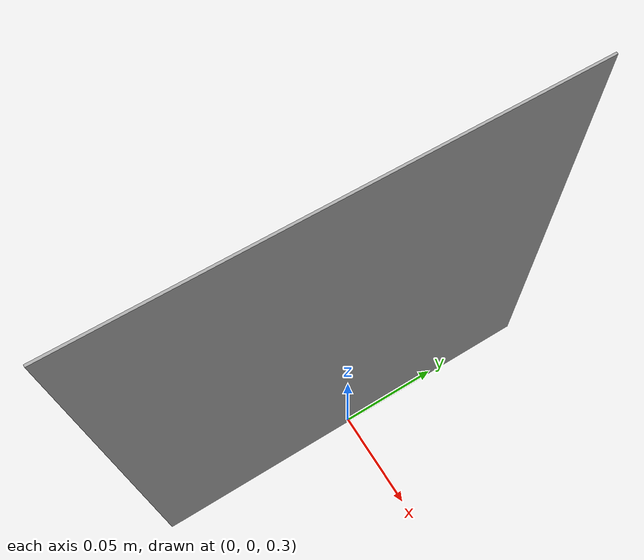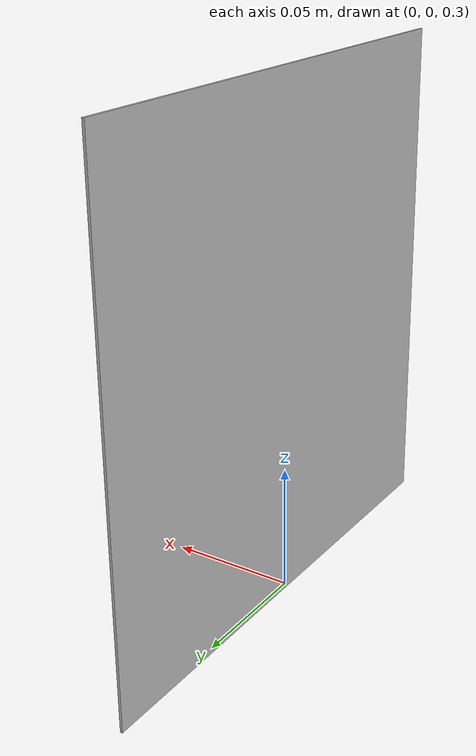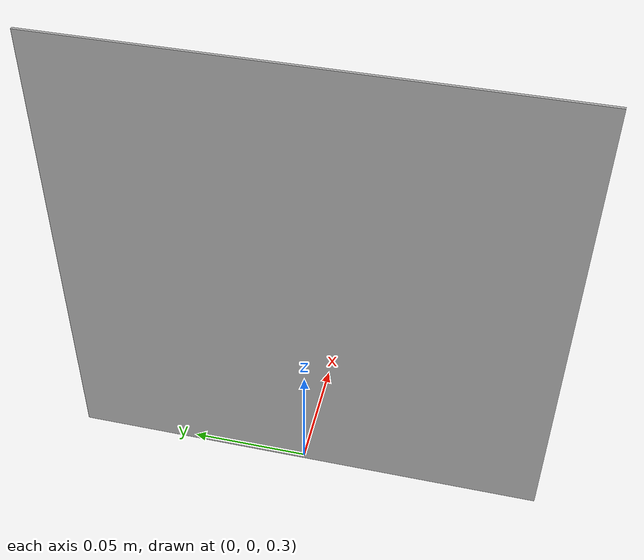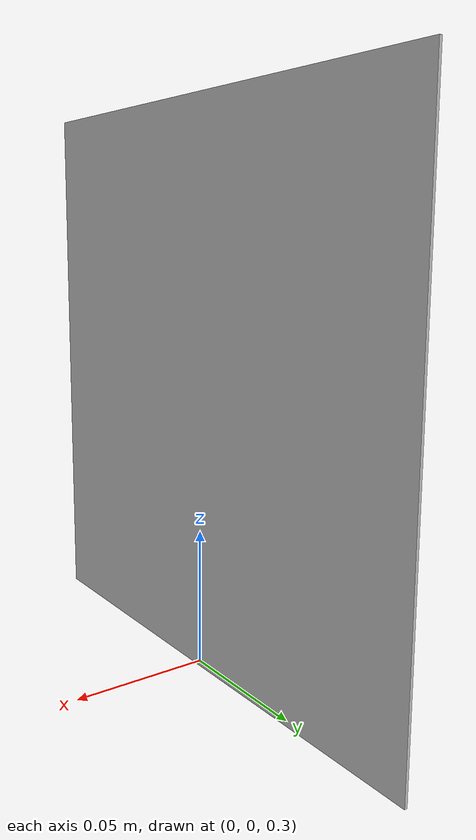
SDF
<?xml version='1.0'?>
<sdf version='1.4'>
  <model name="april_tag">
    <static>true</static>
    <pose>0 0 .4 1.5707963267948966 0 0</pose>
    <link name="tag">
      <pose>0 0 0 0 0 0</pose>
      <visual name='visual'>
        <geometry>
          <mesh>
            <uri>
              model://april_tag/meshes/april_tag.dae
            </uri>
          </mesh>
        </geometry>
      </visual>
      <collision name='collision'>
        <geometry>
          <mesh>
            <uri>
              model://april_tag/meshes/april_tag.dae
            </uri>
          </mesh>
        </geometry>
      </collision>
    </link>
  </model>
</sdf>
